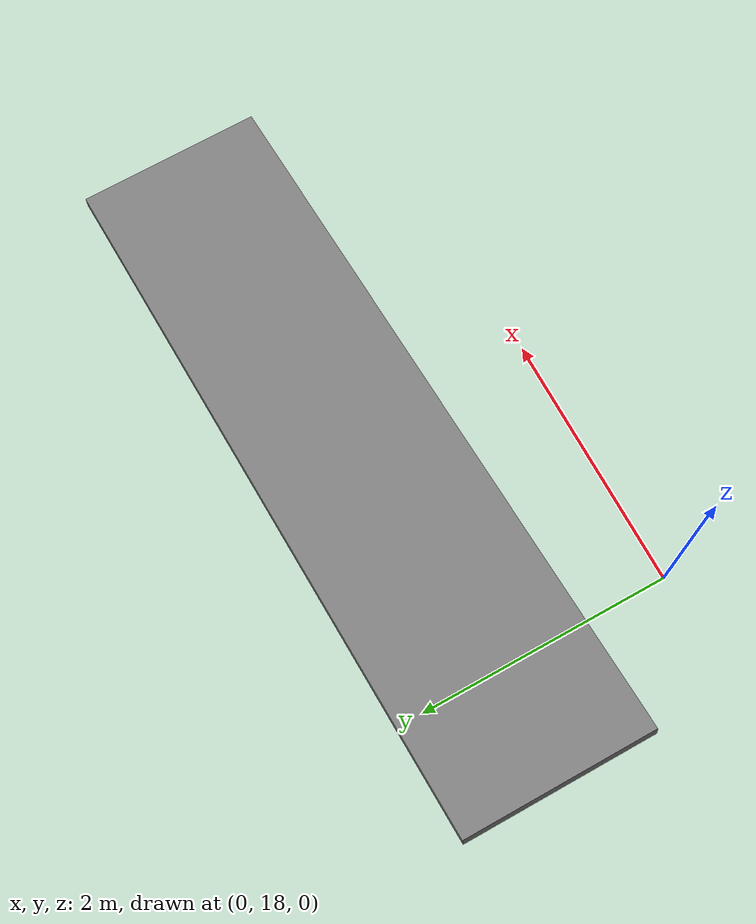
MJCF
<mujoco model="go2 scene">
  <statistic center="0 0 0.1" extent="0.8" />

  <visual>
    <headlight diffuse="0.6 0.6 0.6" ambient="0.3 0.3 0.3" specular="0 0 0" />
    <rgba haze="0.15 0.25 0.35 1" />
    <global azimuth="-130" elevation="-20" />
  </visual>

  <asset>
    <texture type="skybox" builtin="gradient" rgb1="0.3 0.5 0.7" rgb2="0 0 0" width="512" height="3072" />
  </asset>

  <worldbody>
  <geom pos="2.0 19.5 0" type="box" size="3 0.75 0.05" quat="-3.6530904858106032e-06 -0.10450881634750556 3.8388231755495704e-07 -0.9945239601398002" /></worldbody>
</mujoco>
